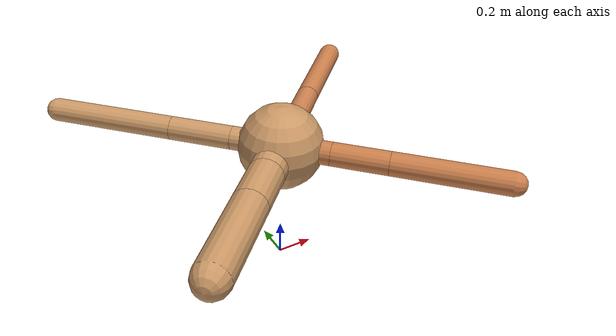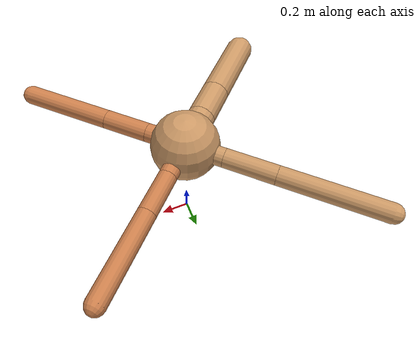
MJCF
<?xml version="1.0" ?>
<mujoco model="ant">

	<compiler angle="degree" coordinate="local" inertiafromgeom="true"/>

	<option integrator="RK4" timestep="0.01"/>

	<custom>

		<numeric data="0.0 0.0 0.55 1.0 0.0 0.0 0.0 0.0 1.0 0.0 -1.0 0.0 -1.0 0.0 1.0" name="init_qpos"/>

	</custom>

	<default>

		<joint armature="1" damping="1" limited="true"/>

		<geom conaffinity="0" condim="3" density="5.0" friction="1.5 0.1 0.1" margin="0.01" rgba="0.8 0.6 0.4 1"/>

	</default>

	<worldbody>

		<body name="torso" pos="0 0 0.75">

			<geom name="torso_geom" pos="0 0 0" size="0.2392792830503897" type="sphere"/>

			<!--joint armature="0" damping="0" limited="false" margin="0.01" name="root" pos="0 0 0" type="free"/-->

			<body name="front_left_leg" pos="0 0 0">

				<geom fromto="0 0 0 0.2 0.2 0" name="aux_1_geom" size="0.06463427288245603" type="capsule" rgba=".8 .5 .3 1"/>

				<body name="aux_1" pos="0.2 0.2 0">

					<joint axis="0 0 1" name="hip_1" pos="0.0 0.0 0.0" range="-40 40" type="hinge"/>

					<geom fromto="0 0 0 0.21092203798424217 0.21092203798424217 0" name="left_leg_geom" size="0.06463427288245603" type="capsule" rgba=".8 .5 .3 1"/>

					<body pos="0.21092203798424217 0.21092203798424217 0" name="front_left_foot">

						<joint axis="-1 1 0" name="ankle_1" pos="0.0 0.0 0.0" range="30 100" type="hinge"/>

						<geom fromto="0 0 0 0.42184407596848433 0.42184407596848433 0" name="left_ankle_geom" size="0.06463427288245603" type="capsule" rgba=".8 .5 .3 1"/>

					</body>

				</body>

			</body>

			<body name="front_right_leg" pos="0 0 0">

				<geom fromto="0 0 0 -0.2 0.2 0" name="aux_2_geom" size="0.06740510055632501" type="capsule"/>

				<body name="aux_2" pos="-0.2 0.2 0">

					<joint axis="0 0 1" name="hip_2" pos="0.0 0.0 0.0" range="-40 40" type="hinge"/>

					<geom fromto="0 0 0 -0.2553970624198129 0.2553970624198129 0" name="right_leg_geom" size="0.06740510055632501" type="capsule"/>

					<body pos="-0.2553970624198129 0.2553970624198129 0" name="front_right_foot">

						<joint axis="1 1 0" name="ankle_2" pos="0.0 0.0 0.0" range="-100 -30" type="hinge"/>

						<geom fromto="0 0 0 -0.5107941248396258 0.5107941248396258 0" name="right_ankle_geom" size="0.06740510055632501" type="capsule"/>

					</body>

				</body>

			</body>

			<body name="left_back_leg" pos="0 0 0">

				<geom fromto="0 0 0 -0.2 -0.2 0" name="aux_3_geom" size="0.10110697905468795" type="capsule"/>

				<body name="aux_3" pos="-0.2 -0.2 0">

					<joint axis="0 0 1" name="hip_3" pos="0.0 0.0 0.0" range="-40 40" type="hinge"/>

					<geom fromto="0 0 0 -0.19084400475376018 -0.19084400475376018 0" name="back_leg_geom" size="0.10110697905468795" type="capsule"/>

					<body pos="-0.19084400475376018 -0.19084400475376018 0" name="left_back_foot">

						<joint axis="-1 1 0" name="ankle_3" pos="0.0 0.0 0.0" range="-100 -30" type="hinge"/>

						<geom fromto="0 0 0 -0.38168800950752035 -0.38168800950752035 0" name="third_ankle_geom" size="0.10110697905468795" type="capsule"/>

					</body>

				</body>

			</body>

			<body name="right_back_leg" pos="0 0 0">

				<geom fromto="0 0 0 0.2 -0.2 0" name="aux_4_geom" size="0.06715019196862657" type="capsule" rgba=".8 .5 .3 1"/>

				<body name="aux_4" pos="0.2 -0.2 0">

					<joint axis="0 0 1" name="hip_4" pos="0.0 0.0 0.0" range="-40 40" type="hinge"/>

					<geom fromto="0 0 0 0.22430287332959098 -0.22430287332959098 0" name="rightback_leg_geom" size="0.06715019196862657" type="capsule" rgba=".8 .5 .3 1"/>

					<body pos="0.22430287332959098 -0.22430287332959098 0" name="right_back_foot">

						<joint axis="1 1 0" name="ankle_4" pos="0.0 0.0 0.0" range="30 100" type="hinge"/>

						<geom fromto="0 0 0 0.44860574665918196 -0.44860574665918196 0" name="fourth_ankle_geom" size="0.06715019196862657" type="capsule" rgba=".8 .5 .3 1"/>

					</body>

				</body>

			</body>

		</body>

	</worldbody>

	<actuator>

		<motor ctrllimited="true" ctrlrange="-1.0 1.0" joint="hip_4" gear="150"/>

		<motor ctrllimited="true" ctrlrange="-1.0 1.0" joint="ankle_4" gear="150"/>

		<motor ctrllimited="true" ctrlrange="-1.0 1.0" joint="hip_1" gear="150"/>

		<motor ctrllimited="true" ctrlrange="-1.0 1.0" joint="ankle_1" gear="150"/>

		<motor ctrllimited="true" ctrlrange="-1.0 1.0" joint="hip_2" gear="150"/>

		<motor ctrllimited="true" ctrlrange="-1.0 1.0" joint="ankle_2" gear="150"/>

		<motor ctrllimited="true" ctrlrange="-1.0 1.0" joint="hip_3" gear="150"/>

		<motor ctrllimited="true" ctrlrange="-1.0 1.0" joint="ankle_3" gear="150"/>

	</actuator>

</mujoco>
